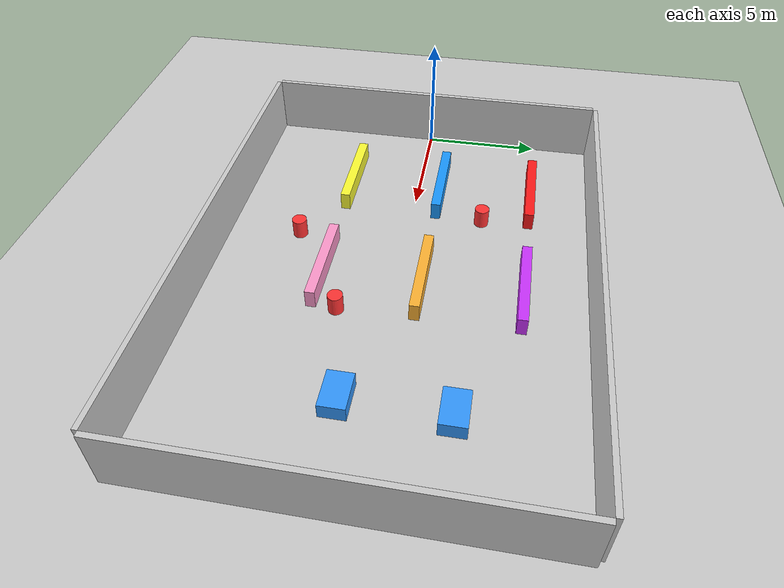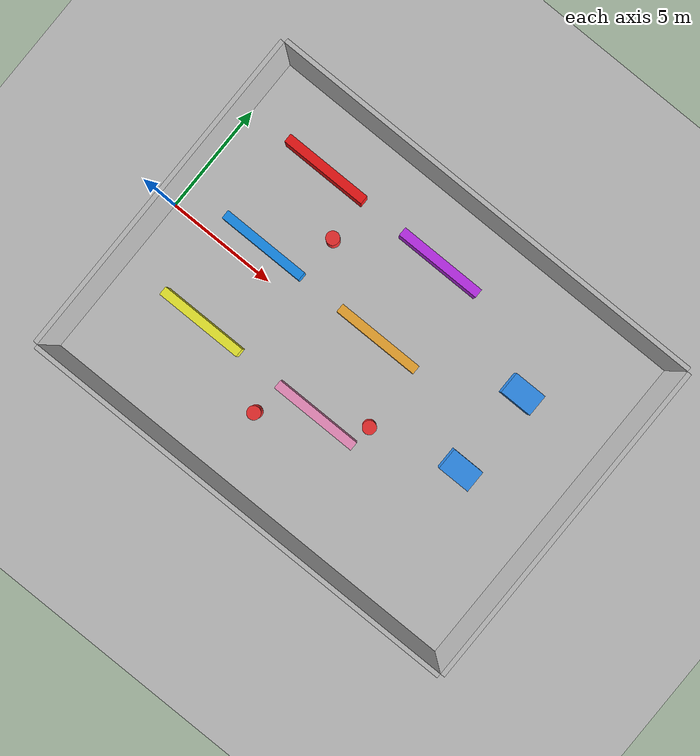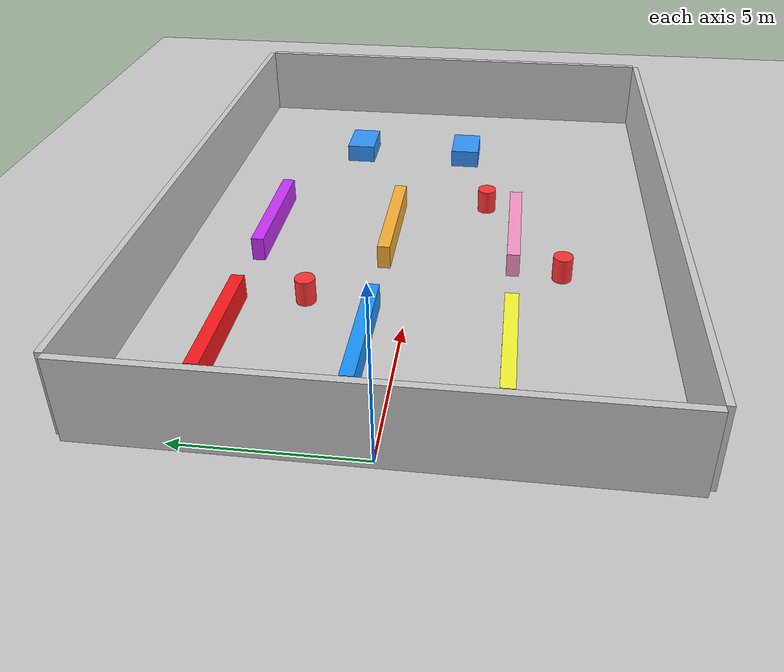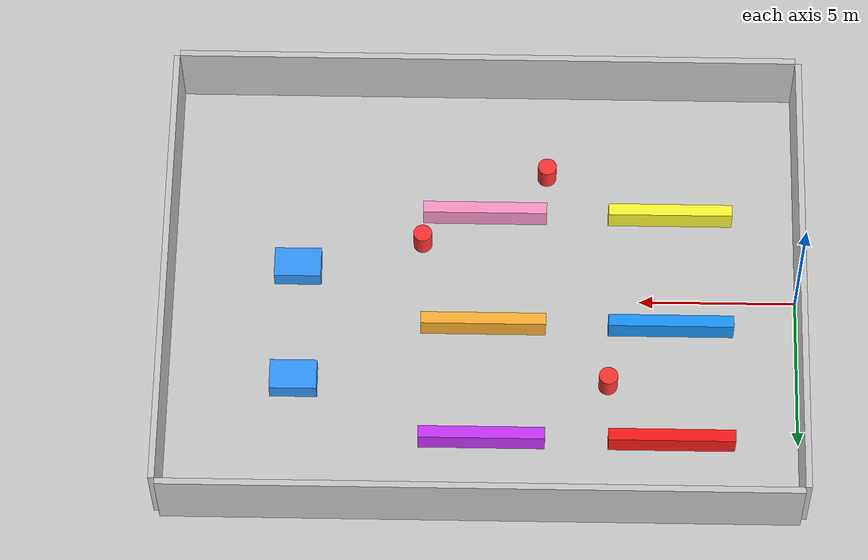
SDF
<?xml version="1.0" ?>
<sdf version="1.6">
  <world name="supermarket_world">
    <physics type="ode">
      <max_step_size>0.001</max_step_size>
      <real_time_factor>1</real_time_factor>
      <real_time_update_rate>1000</real_time_update_rate>
      <gravity>0 0 -9.81</gravity>
    </physics>

    <!-- Mặt trời -->
    <include>
      <uri>model://sun</uri>
    </include>

    <!-- Mặt đất -->
    <include>
      <uri>model://ground_plane</uri>
    </include>

    <!-- Đèn chiếu sáng trên trần -->
    <light name='overhead_light_1' type='point'>
      <pose>7 2.5 3.5 0 0 0</pose>
      <diffuse>1 1 1 1</diffuse>
      <specular>0.5 0.5 0.5 1</specular>
      <attenuation>
        <range>20</range>
        <constant>0.3</constant>
        <linear>0.01</linear>
      </attenuation>
    </light>

    <light name='overhead_light_2' type='point'>
      <pose>7 -2.5 3.5 0 0 0</pose>
      <diffuse>1 1 1 1</diffuse>
      <specular>0.5 0.5 0.5 1</specular>
      <attenuation>
        <range>20</range>
        <constant>0.3</constant>
        <linear>0.01</linear>
      </attenuation>
    </light>

    <light name='overhead_light_3' type='point'>
      <pose>14 2.5 3.5 0 0 0</pose>
      <diffuse>1 1 1 1</diffuse>
      <specular>0.5 0.5 0.5 1</specular>
      <attenuation>
        <range>20</range>
        <constant>0.3</constant>
        <linear>0.01</linear>
      </attenuation>
    </light>

    <light name='overhead_light_4' type='point'>
      <pose>14 -2.5 3.5 0 0 0</pose>
      <diffuse>1 1 1 1</diffuse>
      <specular>0.5 0.5 0.5 1</specular>
      <attenuation>
        <range>20</range>
        <constant>0.3</constant>
        <linear>0.01</linear>
      </attenuation>
    </light>

    <!-- ========== TƯỜNG BAO QUANH 20x15m ========== -->
    <model name="supermarket_walls">
      <static>true</static>
      <link name="walls_link">
        <!-- Tường Bắc (North) - y=7.5 -->
        <collision name="wall_n_col">
          <pose>10 7.6 1.25 0 0 0</pose>
          <geometry>
            <box>
              <size>20 0.2 2.5</size>
            </box>
          </geometry>
        </collision>
        <visual name="wall_n_vis">
          <pose>10 7.6 1.25 0 0 0</pose>
          <geometry>
            <box>
              <size>20 0.2 2.5</size>
            </box>
          </geometry>
          <material>
            <ambient>0.7 0.7 0.7 1</ambient>
            <diffuse>0.8 0.8 0.8 1</diffuse>
          </material>
        </visual>

        <!-- Tường Nam (South) - y=-7.5 -->
        <collision name="wall_s_col">
          <pose>10 -7.6 1.25 0 0 0</pose>
          <geometry>
            <box>
              <size>20 0.2 2.5</size>
            </box>
          </geometry>
        </collision>
        <visual name="wall_s_vis">
          <pose>10 -7.6 1.25 0 0 0</pose>
          <geometry>
            <box>
              <size>20 0.2 2.5</size>
            </box>
          </geometry>
          <material>
            <ambient>0.7 0.7 0.7 1</ambient>
            <diffuse>0.8 0.8 0.8 1</diffuse>
          </material>
        </visual>

        <!-- Tường Đông (East) - x=20 -->
        <collision name="wall_e_col">
          <pose>20.1 0 1.25 0 0 0</pose>
          <geometry>
            <box>
              <size>0.2 15 2.5</size>
            </box>
          </geometry>
        </collision>
        <visual name="wall_e_vis">
          <pose>20.1 0 1.25 0 0 0</pose>
          <geometry>
            <box>
              <size>0.2 15 2.5</size>
            </box>
          </geometry>
          <material>
            <ambient>0.7 0.7 0.7 1</ambient>
            <diffuse>0.8 0.8 0.8 1</diffuse>
          </material>
        </visual>

        <!-- Tường Tây (West) - x=0 -->
        <collision name="wall_w_col">
          <pose>-0.1 0 1.25 0 0 0</pose>
          <geometry>
            <box>
              <size>0.2 15 2.5</size>
            </box>
          </geometry>
        </collision>
        <visual name="wall_w_vis">
          <pose>-0.1 0 1.25 0 0 0</pose>
          <geometry>
            <box>
              <size>0.2 15 2.5</size>
            </box>
          </geometry>
          <material>
            <ambient>0.7 0.7 0.7 1</ambient>
            <diffuse>0.8 0.8 0.8 1</diffuse>
          </material>
        </visual>
      </link>
    </model>

    <!-- ========== 6 KỀ HÀNG ========== -->
    <!-- Kệ A: Sữa & Nước - Màu đỏ - x=4, y=5 -->
    <model name="shelf_A">
      <static>true</static>
      <pose>4 5 0 0 0 0</pose>
      <link name="link">
        <collision name="col">
          <geometry>
            <box>
              <size>4 0.4 1.5</size>
            </box>
          </geometry>
        </collision>
        <visual name="vis">
          <geometry>
            <box>
              <size>4 0.4 1.5</size>
            </box>
          </geometry>
          <material>
            <ambient>0.8 0 0 1</ambient>
            <diffuse>1 0.1 0.1 1</diffuse>
            <emissive>0 0 0 1</emissive>
          </material>
        </visual>
      </link>
    </model>

    <!-- Kệ B: Bánh kẹo - Màu xanh - x=4, y=1 -->
    <model name="shelf_B">
      <static>true</static>
      <pose>4 1 0 0 0 0</pose>
      <link name="link">
        <collision name="col">
          <geometry>
            <box>
              <size>4 0.4 1.5</size>
            </box>
          </geometry>
        </collision>
        <visual name="vis">
          <geometry>
            <box>
              <size>4 0.4 1.5</size>
            </box>
          </geometry>
          <material>
            <ambient>0 0.5 1 1</ambient>
            <diffuse>0.1 0.6 1 1</diffuse>
          </material>
        </visual>
      </link>
    </model>

    <!-- Kệ C: Rau củ - Màu vàng - x=4, y=-3 -->
    <model name="shelf_C">
      <static>true</static>
      <pose>4 -3 0 0 0 0</pose>
      <link name="link">
        <collision name="col">
          <geometry>
            <box>
              <size>4 0.4 1.5</size>
            </box>
          </geometry>
        </collision>
        <visual name="vis">
          <geometry>
            <box>
              <size>4 0.4 1.5</size>
            </box>
          </geometry>
          <material>
            <ambient>1 0.8 0 1</ambient>
            <diffuse>1 1 0.2 1</diffuse>
          </material>
        </visual>
      </link>
    </model>

    <!-- Kệ D: Thịt cá - Màu tím - x=10, y=5 -->
    <model name="shelf_D">
      <static>true</static>
      <pose>10 5 0 0 0 0</pose>
      <link name="link">
        <collision name="col">
          <geometry>
            <box>
              <size>4 0.4 1.5</size>
            </box>
          </geometry>
        </collision>
        <visual name="vis">
          <geometry>
            <box>
              <size>4 0.4 1.5</size>
            </box>
          </geometry>
          <material>
            <ambient>0.6 0 0.8 1</ambient>
            <diffuse>0.8 0.2 1 1</diffuse>
          </material>
        </visual>
      </link>
    </model>

    <!-- Kệ E: Đồ đông lạnh - Màu cam - x=10, y=1 -->
    <model name="shelf_E">
      <static>true</static>
      <pose>10 1 0 0 0 0</pose>
      <link name="link">
        <collision name="col">
          <geometry>
            <box>
              <size>4 0.4 1.5</size>
            </box>
          </geometry>
        </collision>
        <visual name="vis">
          <geometry>
            <box>
              <size>4 0.4 1.5</size>
            </box>
          </geometry>
          <material>
            <ambient>1 0.5 0 1</ambient>
            <diffuse>1 0.7 0.2 1</diffuse>
          </material>
        </visual>
      </link>
    </model>

    <!-- Kệ F: Hóa mỹ phẩm - Màu hồng - x=10, y=-3 -->
    <model name="shelf_F">
      <static>true</static>
      <pose>10 -3 0 0 0 0</pose>
      <link name="link">
        <collision name="col">
          <geometry>
            <box>
              <size>4 0.4 1.5</size>
            </box>
          </geometry>
        </collision>
        <visual name="vis">
          <geometry>
            <box>
              <size>4 0.4 1.5</size>
            </box>
          </geometry>
          <material>
            <ambient>1 0.4 0.7 1</ambient>
            <diffuse>1 0.6 0.8 1</diffuse>
          </material>
        </visual>
      </link>
    </model>

    <!-- ========== QUẦY THANH TOÁN ========== -->
    <!-- Quầy 1: x=16, y=3 -->
    <model name="checkout_1">
      <static>true</static>
      <pose>16 3 0 0 0 0</pose>
      <link name="link">
        <collision name="col">
          <geometry>
            <box>
              <size>1.5 1 1.2</size>
            </box>
          </geometry>
        </collision>
        <visual name="vis">
          <geometry>
            <box>
              <size>1.5 1 1.2</size>
            </box>
          </geometry>
          <material>
            <ambient>0 0.4 0.8 1</ambient>
            <diffuse>0.2 0.6 1 1</diffuse>
          </material>
        </visual>
      </link>
    </model>

    <!-- Quầy 2: x=16, y=-1 -->
    <model name="checkout_2">
      <static>true</static>
      <pose>16 -1 0 0 0 0</pose>
      <link name="link">
        <collision name="col">
          <geometry>
            <box>
              <size>1.5 1 1.2</size>
            </box>
          </geometry>
        </collision>
        <visual name="vis">
          <geometry>
            <box>
              <size>1.5 1 1.2</size>
            </box>
          </geometry>
          <material>
            <ambient>0 0.4 0.8 1</ambient>
            <diffuse>0.2 0.6 1 1</diffuse>
          </material>
        </visual>
      </link>
    </model>

    <!-- ========== KHÁCH HÀNG (STATIC OBSTACLES) ========== -->
    <!-- Khách 1 -->
    <model name="customer_1">
      <static>true</static>
      <pose>6 3 0.4 0 0 0</pose>
      <link name="link">
        <collision name="col">
          <geometry>
            <cylinder>
              <radius>0.3</radius>
              <length>0.8</length>
            </cylinder>
          </geometry>
        </collision>
        <visual name="vis">
          <geometry>
            <cylinder>
              <radius>0.3</radius>
              <length>0.8</length>
            </cylinder>
          </geometry>
          <material>
            <ambient>0.8 0 0 1</ambient>
            <diffuse>1 0.2 0.2 1</diffuse>
          </material>
        </visual>
      </link>
    </model>

    <!-- Khách 2 -->
    <model name="customer_2">
      <static>true</static>
      <pose>12 -2 0.4 0 0 0</pose>
      <link name="link">
        <collision name="col">
          <geometry>
            <cylinder>
              <radius>0.3</radius>
              <length>0.8</length>
            </cylinder>
          </geometry>
        </collision>
        <visual name="vis">
          <geometry>
            <cylinder>
              <radius>0.3</radius>
              <length>0.8</length>
            </cylinder>
          </geometry>
          <material>
            <ambient>0.8 0 0 1</ambient>
            <diffuse>1 0.2 0.2 1</diffuse>
          </material>
        </visual>
      </link>
    </model>

    <!-- Khách 3 -->
    <model name="customer_3">
      <static>true</static>
      <pose>8 -4.5 0.4 0 0 0</pose>
      <link name="link">
        <collision name="col">
          <geometry>
            <cylinder>
              <radius>0.3</radius>
              <length>0.8</length>
            </cylinder>
          </geometry>
        </collision>
        <visual name="vis">
          <geometry>
            <cylinder>
              <radius>0.3</radius>
              <length>0.8</length>
            </cylinder>
          </geometry>
          <material>
            <ambient>0.8 0 0 1</ambient>
            <diffuse>1 0.2 0.2 1</diffuse>
          </material>
        </visual>
      </link>
    </model>

  </world>
</sdf>
